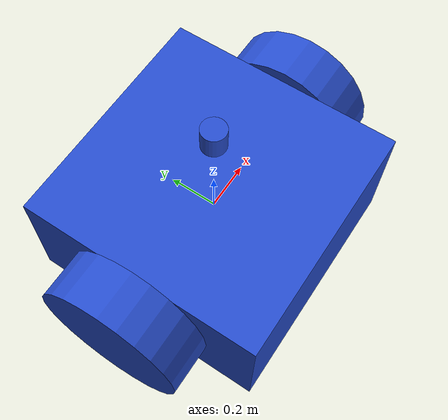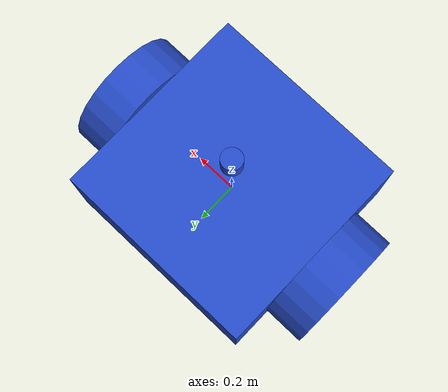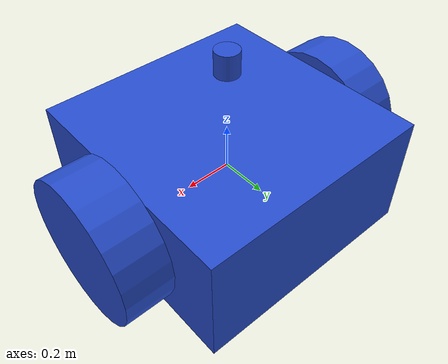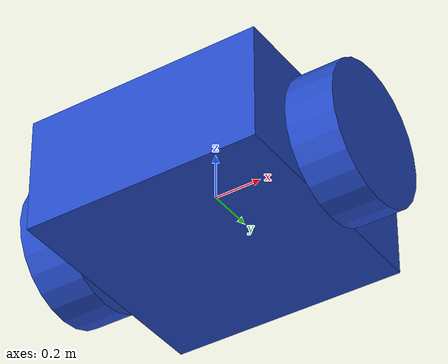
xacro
<?xml version="1.0"?>
<robot name="diff_drive_robot" xmlns:xacro="http://ros.org/wiki/xacro">
  <!-- Константы -->
  <xacro:property name="base_length" value="1"/>
  <xacro:property name="base_width" value="1"/>
  <xacro:property name="base_height" value="0.5"/>
  <xacro:property name="wheel_radius" value="0.3"/>
  <xacro:property name="wheel_length" value="0.2"/>
  <xacro:property name="wheel_mass" value="0.2"/>
  <xacro:property name="base_mass" value="1.0"/>

  <link name="world"/>

  <joint name="world_to_base" type="fixed">
    <parent link="world"/>
    <child link="base_link"/>
    <origin xyz="0 0 0" rpy="0 0 0"/>
  </joint>

  <!-- Базовый корпус робота -->
  <link name="base_link">
    <visual>
      <geometry>
        <box size="${base_length} ${base_width} ${base_height}"/>
      </geometry>
      <material name="Gazebo/Blue"/>
    </visual>
    <collision>
      <geometry>
        <box size="${base_length} ${base_width} ${base_height}"/>
      </geometry>
    </collision>
    <inertial>
      <mass value="${base_mass}"/>
      <origin rpy="0 0 0" xyz="0 0 0"/>
      <inertia ixx="0.1" ixy="0.0" ixz="0.0" iyy="0.1" iyz="0.0" izz="0.1"/>
    </inertial>
  </link>

  <!-- Левое заднее колесо -->
  <link name="left_back_wheel">
    <visual>
      <geometry>
        <cylinder length="${wheel_length}" radius="${wheel_radius}"/>
      </geometry>
      <material name="Gazebo/Blue"/>
    </visual>
    <collision>
      <geometry>
        <cylinder length="${wheel_length}" radius="${wheel_radius}"/>
      </geometry>
    </collision>
    <inertial>
      <mass value="${wheel_mass}"/>
      <origin rpy="0 0 0" xyz="0 0 0"/>
      <inertia ixx="0.01" ixy="0.0" ixz="0.0" iyy="0.01" iyz="0.0" izz="0.01"/>
    </inertial>
  </link>

  <!-- Правое заднее колесо -->
  <link name="right_back_wheel">
    <visual>
      <geometry>
        <cylinder length="${wheel_length}" radius="${wheel_radius}"/>
      </geometry>
      <material name="Gazebo/Blue"/>
    </visual>
    <collision>
      <geometry>
        <cylinder length="${wheel_length}" radius="${wheel_radius}"/>
      </geometry>
    </collision>
    <inertial>
      <mass value="${wheel_mass}"/>
      <origin rpy="0 0 0" xyz="0 0 0"/>
      <inertia ixx="0.01" ixy="0.0" ixz="0.0" iyy="0.01" iyz="0.0" izz="0.01"/>
    </inertial>
  </link>

  <!-- Соединения для колес -->
  <joint name="left_back_wheel_joint" type="continuous">
    <parent link="base_link"/>
    <child link="left_back_wheel"/>
    <!--origin xyz="${base_length/-2 - wheel_length/2} ${base_width/2} 0" rpy="0 ${pi/2*1} 0"/-->
    <origin xyz="${base_length/-2 - wheel_length/2} 0 0" rpy="0 ${pi/2*1} 0"/>
    <axis xyz="0 0 1"/>
  </joint>

  <joint name="right_back_wheel_joint" type="continuous">
    <parent link="base_link"/>
    <child link="right_back_wheel"/>
    <!--origin xyz="${base_length/2 + wheel_length/2} ${base_width/2} 0" rpy="0 ${pi/2*1} 0"/-->
    <origin xyz="${base_length/2 + wheel_length/2} 0 0" rpy="0 ${pi/2*1} 0"/>
    <axis xyz="0 0 1"/>
  </joint>

  <!-- Плагин для публикации состояний соединений -->
  <gazebo>
    <plugin name="gazebo_ros_joint_state_publisher" filename="libgazebo_ros_joint_state_publisher.so">
      <ros>
        <namespace>/</namespace>
      </ros>
      <joint_name>left_back_wheel_joint</joint_name>
      <joint_name>right_back_wheel_joint</joint_name>
    </plugin>
  </gazebo>

  <!-- Плагин для дифференциального привода -->
  <gazebo>
    <plugin name="gazebo_ros_diff_drive" filename="libgazebo_ros_diff_drive.so">
      <ros>
        <namespace>/</namespace>
        <remapping>cmd_vel:=/cmd_vel</remapping> <!-- Подключение к топику /cmd_vel -->
      </ros>
      <update_rate>100.0</update_rate> <!-- Частота обновления -->

      <left_joint>left_back_wheel_joint</left_joint> <!-- Левое колесо -->
      <right_joint>right_back_wheel_joint</right_joint> <!-- Правое колесо -->
      <!-- Левое колесо -->
      <!-- Правое колесо -->

      <wheel_separation>${base_width + wheel_length}</wheel_separation> <!-- Расстояние между колесами -->
      <wheel_diameter>${wheel_radius*2}</wheel_diameter> <!-- Радиус колес -->

      <odometrySource>joint_states</odometrySource> <!-- Источник одометрии -->
    </plugin>
  </gazebo>

    <!-- Лидар -->
  <link name="lidar_link">
    <visual>
      <geometry>
        <cylinder length="0.1" radius="0.05"/>
      </geometry>
      <material name="Gazebo/Blue"/>
    </visual>
    <collision>
      <geometry>
        <cylinder length="0.1" radius="0.05"/>
      </geometry>
    </collision>
    <inertial>
      <mass value="0.1"/>
      <origin rpy="0 0 0" xyz="0 0 0"/>
      <inertia ixx="0.01" ixy="0.0" ixz="0.0" iyy="0.01" iyz="0.0" izz="0.01"/>
    </inertial  >
  </link>

  <joint name="lidar_joint" type="fixed">
    <parent link="base_link"/>
    <child link="lidar_link"/>
    <origin xyz="0 0 0.5" rpy="0 0 0"/>
  </joint>

  <gazebo reference="lidar_link">
    <sensor type="gpu_lidar" name="gpu_lidar">
      <update_rate>10</update_rate>
      <ray>
        <scan>
          <horizontal>
            <samples>360</samples>
            <resolution>1</resolution>
            <min_angle>-1.57</min_angle>
            <max_angle>1.57</max_angle>
          </horizontal>
        </scan>
        <range>
          <min>0.2</min>
          <max>10.0</max>
          <resolution>0.01</resolution>
        </range>
        <noise>
          <type>gaussian</type>
          <mean>0.0</mean>
          <stddev>0.01</stddev>
        </noise>
      </ray>
      <plugin name="gazebo_ros_laser" filename="libgazebo_ros_gpu_laser.so">
        <ros>
          <namespace>/</namespace>
        </ros>
        <topicName>/scan</topicName>
        <frameName>lidar_link</frameName>
      </plugin>
    </sensor>
  </gazebo>
</robot>
